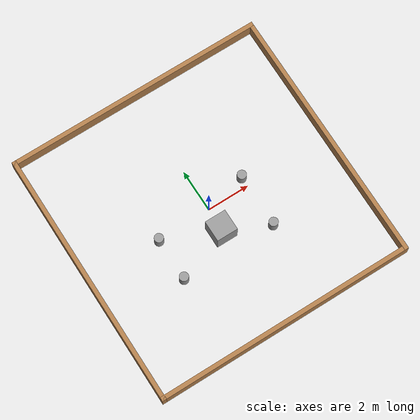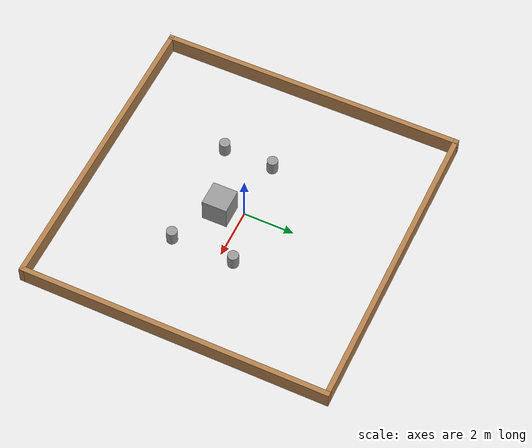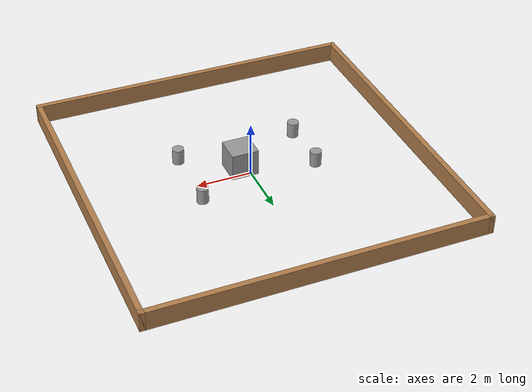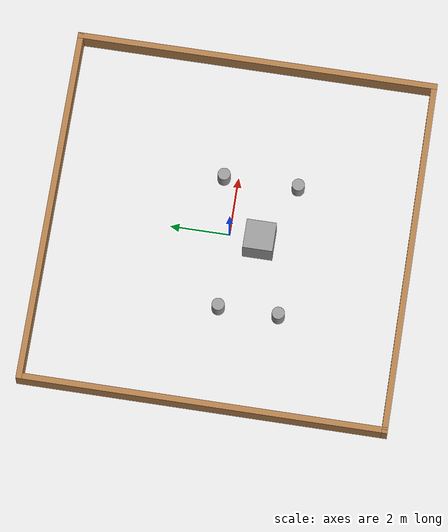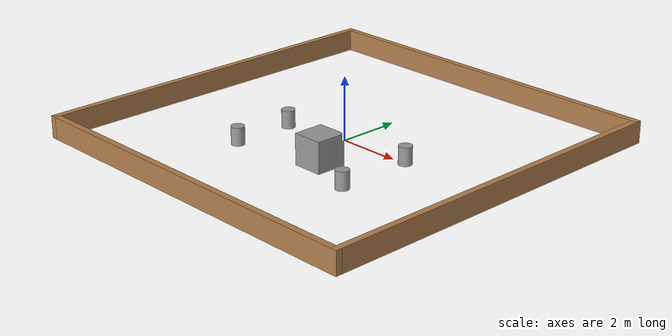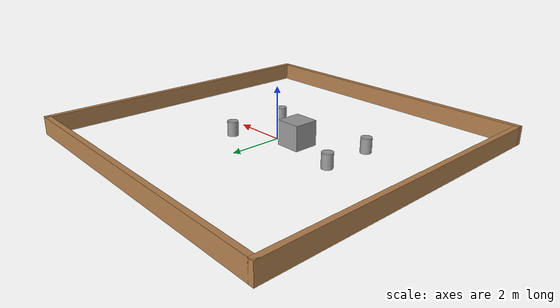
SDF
<sdf version="1.4">
 <world name="default">
  <scene>
   <ambient>0.4 0.4 0.4 1</ambient>
   <background>0.7 0.7 0.7 1</background>
   <shadows>true</shadows>
   <sky><clouds><speed>15</speed></clouds></sky>
  </scene>
  <include><uri>model://sun</uri></include>
  <include><uri>model://square2</uri></include>
  <include name="obs1"><uri>model://unit_cylinder3</uri><pose>-2.5 0 0 0 0 0</pose></include>
  <include name="obs2"><uri>model://unit_cylinder3_1</uri><pose>-2.5 -2 0 0 0 0</pose></include>
  <include name="obs3"><uri>model://unit_cylinder3_2</uri><pose>2 0.5 0 0 0 0</pose></include>
  <include name="obs4"><uri>model://unit_cylinder3_3</uri><pose>2 -2 0 0 0 0</pose></include>
  <include name="obs5"><uri>model://unit_box</uri><pose>0 -1 0 0 0 0</pose></include>
  <physics type="ode">
   <real_time_update_rate>1000.0</real_time_update_rate>
   <max_step_size>0.001</max_step_size>
   <real_time_factor>1</real_time_factor>
   <ode>
    <solver>
     <type>quick</type>
     <iters>150</iters>
     <precon_iters>0</precon_iters>
     <sor>1.400000</sor>
     <use_dynamic_moi_rescaling>1</use_dynamic_moi_rescaling>
    </solver>
    <constraints>
     <cfm>0.00001</cfm>
     <erp>0.2</erp>
     <contact_max_correcting_vel>2000.000000</contact_max_correcting_vel>
     <contact_surface_layer>0.01000</contact_surface_layer>
    </constraints>
   </ode>
  </physics>
 </world>
</sdf>

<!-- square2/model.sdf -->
<sdf version='1.7'>
  <model name='square2'>
    <pose>0 0 0 0 -0 0</pose>
    <link name='Wall_0'>
      <collision name='Wall_0_Collision'>
        <geometry>
          <box>
            <size>12.2 0.2 0.7</size>
          </box>
        </geometry>
        <pose>0 0 0.35 0 -0 0</pose>
      </collision>
      <visual name='Wall_0_Visual'>
        <pose>0 0 0.35 0 -0 0</pose>
        <geometry>
          <box>
            <size>12.2 0.2 0.7</size>
          </box>
        </geometry>
        <material>
          <script>
            <uri>file://media/materials/scripts/gazebo.material</uri>
            <name>Gazebo/Wood</name>
          </script>
          <ambient>1 1 1 1</ambient>
        </material>
        <meta>
          <layer>0</layer>
        </meta>
      </visual>
      <pose>-6 0 0 0 -0 1.5708</pose>
    </link>
    <link name='Wall_1'>
      <collision name='Wall_1_Collision'>
        <geometry>
          <box>
            <size>12.2 0.2 0.7</size>
          </box>
        </geometry>
        <pose>0 0 0.35 0 -0 0</pose>
      </collision>
      <visual name='Wall_1_Visual'>
        <pose>0 0 0.35 0 -0 0</pose>
        <geometry>
          <box>
            <size>12.2 0.2 0.7</size>
          </box>
        </geometry>
        <material>
          <script>
            <uri>file://media/materials/scripts/gazebo.material</uri>
            <name>Gazebo/Wood</name>
          </script>
          <ambient>1 1 1 1</ambient>
        </material>
        <meta>
          <layer>0</layer>
        </meta>
      </visual>
      <pose>0 6 0 0 -0 0</pose>
    </link>
    <link name='Wall_2'>
      <collision name='Wall_2_Collision'>
        <geometry>
          <box>
            <size>12.2 0.2 0.7</size>
          </box>
        </geometry>
        <pose>0 0 0.35 0 -0 0</pose>
      </collision>
      <visual name='Wall_2_Visual'>
        <pose>0 0 0.35 0 -0 0</pose>
        <geometry>
          <box>
            <size>12.2 0.2 0.7</size>
          </box>
        </geometry>
        <material>
          <script>
            <uri>file://media/materials/scripts/gazebo.material</uri>
            <name>Gazebo/Wood</name>
          </script>
          <ambient>1 1 1 1</ambient>
        </material>
        <meta>
          <layer>0</layer>
        </meta>
      </visual>
      <pose>6 0 0 0 -0 -1.5708</pose>
    </link>
    <link name='Wall_3'>
      <collision name='Wall_3_Collision'>
        <geometry>
          <box>
            <size>12.2 0.2 0.7</size>
          </box>
        </geometry>
        <pose>0 0 0.35 0 -0 0</pose>
      </collision>
      <visual name='Wall_3_Visual'>
        <pose>0 0 0.35 0 -0 0</pose>
        <geometry>
          <box>
            <size>12.2 0.2 0.7</size>
          </box>
        </geometry>
        <material>
          <script>
            <uri>file://media/materials/scripts/gazebo.material</uri>
            <name>Gazebo/Wood</name>
          </script>
          <ambient>1 1 1 1</ambient>
        </material>
        <meta>
          <layer>0</layer>
        </meta>
      </visual>
      <pose>0 -6 0 0 -0 3.14159</pose>
    </link>
    <static>1</static>
  </model>
</sdf>

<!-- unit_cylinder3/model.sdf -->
<sdf version='1.7'>
  <model name='unit_cylinder3'>
    <link name='link'>
      <inertial>
        <mass>1</mass>
        <inertia>
          <ixx>0.145833</ixx>
          <ixy>0</ixy>
          <ixz>0</ixz>
          <iyy>0.145833</iyy>
          <iyz>0</iyz>
          <izz>0.125</izz>
        </inertia>
        <pose>0 0 0 0 -0 0</pose>
      </inertial>
      <self_collide>0</self_collide>
      <enable_wind>0</enable_wind>
      <kinematic>0</kinematic>
      <pose>0 0 0 0 -0 0</pose>
      <visual name='visual'>
        <geometry>
          <cylinder>
            <radius>0.212132</radius>
            <length>0.579997</length>
          </cylinder>
        </geometry>
        <material>
          <script>
            <name>Gazebo/Grey</name>
            <uri>file://media/materials/scripts/gazebo.material</uri>
          </script>
          <shader type='pixel'/>
        </material>
        <pose>0 0 0 0 -0 0</pose>
        <transparency>0</transparency>
        <cast_shadows>1</cast_shadows>
      </visual>
      <collision name='collision'>
        <laser_retro>0</laser_retro>
        <max_contacts>10</max_contacts>
        <pose>0 0 0 0 -0 0</pose>
        <geometry>
          <cylinder>
            <radius>0.212132</radius>
            <length>0.579997</length>
          </cylinder>
        </geometry>
        <surface>
          <friction>
            <ode>
              <mu>1</mu>
              <mu2>1</mu2>
              <fdir1>0 0 0</fdir1>
              <slip1>0</slip1>
              <slip2>0</slip2>
            </ode>
            <torsional>
              <coefficient>1</coefficient>
              <patch_radius>0</patch_radius>
              <surface_radius>0</surface_radius>
              <use_patch_radius>1</use_patch_radius>
              <ode>
                <slip>0</slip>
              </ode>
            </torsional>
          </friction>
          <bounce>
            <restitution_coefficient>0</restitution_coefficient>
            <threshold>1e+06</threshold>
          </bounce>
          <contact>
            <collide_without_contact>0</collide_without_contact>
            <collide_without_contact_bitmask>1</collide_without_contact_bitmask>
            <collide_bitmask>1</collide_bitmask>
            <ode>
              <soft_cfm>0</soft_cfm>
              <soft_erp>0.2</soft_erp>
              <kp>1e+13</kp>
              <kd>1</kd>
              <max_vel>0.01</max_vel>
              <min_depth>0</min_depth>
            </ode>
            <bullet>
              <split_impulse>1</split_impulse>
              <split_impulse_penetration_threshold>-0.01</split_impulse_penetration_threshold>
              <soft_cfm>0</soft_cfm>
              <soft_erp>0.2</soft_erp>
              <kp>1e+13</kp>
              <kd>1</kd>
            </bullet>
          </contact>
        </surface>
      </collision>
    </link>
    <static>0</static>
    <allow_auto_disable>1</allow_auto_disable>
  </model>
</sdf>

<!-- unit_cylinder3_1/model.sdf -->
<sdf version='1.7'>
  <model name='unit_cylinder3_1'>
    <link name='link'>
      <inertial>
        <mass>1</mass>
        <inertia>
          <ixx>0.145833</ixx>
          <ixy>0</ixy>
          <ixz>0</ixz>
          <iyy>0.145833</iyy>
          <iyz>0</iyz>
          <izz>0.125</izz>
        </inertia>
        <pose>0 0 0 0 -0 0</pose>
      </inertial>
      <self_collide>0</self_collide>
      <enable_wind>0</enable_wind>
      <kinematic>0</kinematic>
      <pose>0 0 0 0 -0 0</pose>
      <visual name='visual'>
        <geometry>
          <cylinder>
            <radius>0.212132</radius>
            <length>0.579997</length>
          </cylinder>
        </geometry>
        <material>
          <script>
            <name>Gazebo/Grey</name>
            <uri>file://media/materials/scripts/gazebo.material</uri>
          </script>
          <shader type='pixel'/>
        </material>
        <pose>0 0 0 0 -0 0</pose>
        <transparency>0</transparency>
        <cast_shadows>1</cast_shadows>
      </visual>
      <collision name='collision'>
        <laser_retro>0</laser_retro>
        <max_contacts>10</max_contacts>
        <pose>0 0 0 0 -0 0</pose>
        <geometry>
          <cylinder>
            <radius>0.212132</radius>
            <length>0.579997</length>
          </cylinder>
        </geometry>
        <surface>
          <friction>
            <ode>
              <mu>1</mu>
              <mu2>1</mu2>
              <fdir1>0 0 0</fdir1>
              <slip1>0</slip1>
              <slip2>0</slip2>
            </ode>
            <torsional>
              <coefficient>1</coefficient>
              <patch_radius>0</patch_radius>
              <surface_radius>0</surface_radius>
              <use_patch_radius>1</use_patch_radius>
              <ode>
                <slip>0</slip>
              </ode>
            </torsional>
          </friction>
          <bounce>
            <restitution_coefficient>0</restitution_coefficient>
            <threshold>1e+06</threshold>
          </bounce>
          <contact>
            <collide_without_contact>0</collide_without_contact>
            <collide_without_contact_bitmask>1</collide_without_contact_bitmask>
            <collide_bitmask>1</collide_bitmask>
            <ode>
              <soft_cfm>0</soft_cfm>
              <soft_erp>0.2</soft_erp>
              <kp>1e+13</kp>
              <kd>1</kd>
              <max_vel>0.01</max_vel>
              <min_depth>0</min_depth>
            </ode>
            <bullet>
              <split_impulse>1</split_impulse>
              <split_impulse_penetration_threshold>-0.01</split_impulse_penetration_threshold>
              <soft_cfm>0</soft_cfm>
              <soft_erp>0.2</soft_erp>
              <kp>1e+13</kp>
              <kd>1</kd>
            </bullet>
          </contact>
        </surface>
      </collision>
    </link>
    <static>0</static>
    <allow_auto_disable>1</allow_auto_disable>
  </model>
</sdf>

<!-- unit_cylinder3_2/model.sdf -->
<sdf version='1.7'>
  <model name='unit_cylinder3_2'>
    <link name='link'>
      <inertial>
        <mass>1</mass>
        <inertia>
          <ixx>0.145833</ixx>
          <ixy>0</ixy>
          <ixz>0</ixz>
          <iyy>0.145833</iyy>
          <iyz>0</iyz>
          <izz>0.125</izz>
        </inertia>
        <pose>0 0 0 0 -0 0</pose>
      </inertial>
      <self_collide>0</self_collide>
      <enable_wind>0</enable_wind>
      <kinematic>0</kinematic>
      <pose>0 0 0 0 -0 0</pose>
      <visual name='visual'>
        <geometry>
          <cylinder>
            <radius>0.212132</radius>
            <length>0.579997</length>
          </cylinder>
        </geometry>
        <material>
          <script>
            <name>Gazebo/Grey</name>
            <uri>file://media/materials/scripts/gazebo.material</uri>
          </script>
          <shader type='pixel'/>
        </material>
        <pose>0 0 0 0 -0 0</pose>
        <transparency>0</transparency>
        <cast_shadows>1</cast_shadows>
      </visual>
      <collision name='collision'>
        <laser_retro>0</laser_retro>
        <max_contacts>10</max_contacts>
        <pose>0 0 0 0 -0 0</pose>
        <geometry>
          <cylinder>
            <radius>0.212132</radius>
            <length>0.579997</length>
          </cylinder>
        </geometry>
        <surface>
          <friction>
            <ode>
              <mu>1</mu>
              <mu2>1</mu2>
              <fdir1>0 0 0</fdir1>
              <slip1>0</slip1>
              <slip2>0</slip2>
            </ode>
            <torsional>
              <coefficient>1</coefficient>
              <patch_radius>0</patch_radius>
              <surface_radius>0</surface_radius>
              <use_patch_radius>1</use_patch_radius>
              <ode>
                <slip>0</slip>
              </ode>
            </torsional>
          </friction>
          <bounce>
            <restitution_coefficient>0</restitution_coefficient>
            <threshold>1e+06</threshold>
          </bounce>
          <contact>
            <collide_without_contact>0</collide_without_contact>
            <collide_without_contact_bitmask>1</collide_without_contact_bitmask>
            <collide_bitmask>1</collide_bitmask>
            <ode>
              <soft_cfm>0</soft_cfm>
              <soft_erp>0.2</soft_erp>
              <kp>1e+13</kp>
              <kd>1</kd>
              <max_vel>0.01</max_vel>
              <min_depth>0</min_depth>
            </ode>
            <bullet>
              <split_impulse>1</split_impulse>
              <split_impulse_penetration_threshold>-0.01</split_impulse_penetration_threshold>
              <soft_cfm>0</soft_cfm>
              <soft_erp>0.2</soft_erp>
              <kp>1e+13</kp>
              <kd>1</kd>
            </bullet>
          </contact>
        </surface>
      </collision>
    </link>
    <static>0</static>
    <allow_auto_disable>1</allow_auto_disable>
  </model>
</sdf>

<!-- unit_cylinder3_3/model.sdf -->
<sdf version='1.7'>
  <model name='unit_cylinder3_3'>
    <link name='link'>
      <inertial>
        <mass>1</mass>
        <inertia>
          <ixx>0.145833</ixx>
          <ixy>0</ixy>
          <ixz>0</ixz>
          <iyy>0.145833</iyy>
          <iyz>0</iyz>
          <izz>0.125</izz>
        </inertia>
        <pose>0 0 0 0 -0 0</pose>
      </inertial>
      <self_collide>0</self_collide>
      <enable_wind>0</enable_wind>
      <kinematic>0</kinematic>
      <pose>0 0 0 0 -0 0</pose>
      <visual name='visual'>
        <geometry>
          <cylinder>
            <radius>0.212132</radius>
            <length>0.579997</length>
          </cylinder>
        </geometry>
        <material>
          <script>
            <name>Gazebo/Grey</name>
            <uri>file://media/materials/scripts/gazebo.material</uri>
          </script>
          <shader type='pixel'/>
        </material>
        <pose>0 0 0 0 -0 0</pose>
        <transparency>0</transparency>
        <cast_shadows>1</cast_shadows>
      </visual>
      <collision name='collision'>
        <laser_retro>0</laser_retro>
        <max_contacts>10</max_contacts>
        <pose>0 0 0 0 -0 0</pose>
        <geometry>
          <cylinder>
            <radius>0.212132</radius>
            <length>0.579997</length>
          </cylinder>
        </geometry>
        <surface>
          <friction>
            <ode>
              <mu>1</mu>
              <mu2>1</mu2>
              <fdir1>0 0 0</fdir1>
              <slip1>0</slip1>
              <slip2>0</slip2>
            </ode>
            <torsional>
              <coefficient>1</coefficient>
              <patch_radius>0</patch_radius>
              <surface_radius>0</surface_radius>
              <use_patch_radius>1</use_patch_radius>
              <ode>
                <slip>0</slip>
              </ode>
            </torsional>
          </friction>
          <bounce>
            <restitution_coefficient>0</restitution_coefficient>
            <threshold>1e+06</threshold>
          </bounce>
          <contact>
            <collide_without_contact>0</collide_without_contact>
            <collide_without_contact_bitmask>1</collide_without_contact_bitmask>
            <collide_bitmask>1</collide_bitmask>
            <ode>
              <soft_cfm>0</soft_cfm>
              <soft_erp>0.2</soft_erp>
              <kp>1e+13</kp>
              <kd>1</kd>
              <max_vel>0.01</max_vel>
              <min_depth>0</min_depth>
            </ode>
            <bullet>
              <split_impulse>1</split_impulse>
              <split_impulse_penetration_threshold>-0.01</split_impulse_penetration_threshold>
              <soft_cfm>0</soft_cfm>
              <soft_erp>0.2</soft_erp>
              <kp>1e+13</kp>
              <kd>1</kd>
            </bullet>
          </contact>
        </surface>
      </collision>
    </link>
    <static>0</static>
    <allow_auto_disable>1</allow_auto_disable>
  </model>
</sdf>

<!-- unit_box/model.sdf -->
<sdf version='1.7'>
  <model name='unit_box'>
    <link name='link'>
      <inertial>
        <mass>1</mass>
        <inertia>
          <ixx>0.166667</ixx>
          <ixy>0</ixy>
          <ixz>0</ixz>
          <iyy>0.166667</iyy>
          <iyz>0</iyz>
          <izz>0.166667</izz>
        </inertia>
        <pose>0 0 0 0 -0 0</pose>
      </inertial>
      <self_collide>0</self_collide>
      <enable_wind>0</enable_wind>
      <kinematic>0</kinematic>
      <pose>0 0 0 0 -0 0</pose>
      <visual name='visual'>
        <geometry>
          <box>
            <size>1 1 1</size>
          </box>
        </geometry>
        <material>
          <script>
            <name>Gazebo/Grey</name>
            <uri>file://media/materials/scripts/gazebo.material</uri>
          </script>
          <shader type='pixel'/>
        </material>
        <pose>0 0 0 0 -0 0</pose>
        <transparency>0</transparency>
        <cast_shadows>1</cast_shadows>
      </visual>
      <collision name='collision'>
        <laser_retro>0</laser_retro>
        <max_contacts>10</max_contacts>
        <pose>0 0 0 0 -0 0</pose>
        <geometry>
          <box>
            <size>1 1 1</size>
          </box>
        </geometry>
        <surface>
          <friction>
            <ode>
              <mu>1</mu>
              <mu2>1</mu2>
              <fdir1>0 0 0</fdir1>
              <slip1>0</slip1>
              <slip2>0</slip2>
            </ode>
            <torsional>
              <coefficient>1</coefficient>
              <patch_radius>0</patch_radius>
              <surface_radius>0</surface_radius>
              <use_patch_radius>1</use_patch_radius>
              <ode>
                <slip>0</slip>
              </ode>
            </torsional>
          </friction>
          <bounce>
            <restitution_coefficient>0</restitution_coefficient>
            <threshold>1e+06</threshold>
          </bounce>
          <contact>
            <collide_without_contact>0</collide_without_contact>
            <collide_without_contact_bitmask>1</collide_without_contact_bitmask>
            <collide_bitmask>1</collide_bitmask>
            <ode>
              <soft_cfm>0</soft_cfm>
              <soft_erp>0.2</soft_erp>
              <kp>1e+13</kp>
              <kd>1</kd>
              <max_vel>0.01</max_vel>
              <min_depth>0</min_depth>
            </ode>
            <bullet>
              <split_impulse>1</split_impulse>
              <split_impulse_penetration_threshold>-0.01</split_impulse_penetration_threshold>
              <soft_cfm>0</soft_cfm>
              <soft_erp>0.2</soft_erp>
              <kp>1e+13</kp>
              <kd>1</kd>
            </bullet>
          </contact>
        </surface>
      </collision>
    </link>
    <static>0</static>
    <allow_auto_disable>1</allow_auto_disable>
  </model>
</sdf>
